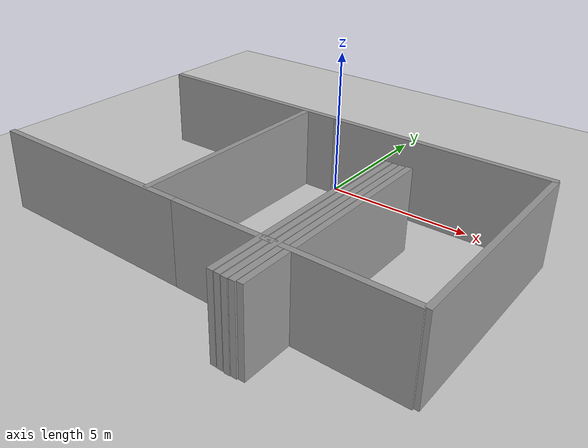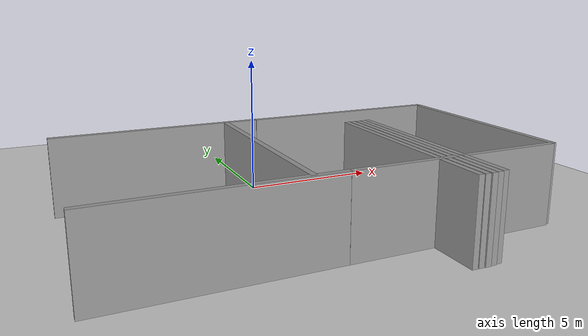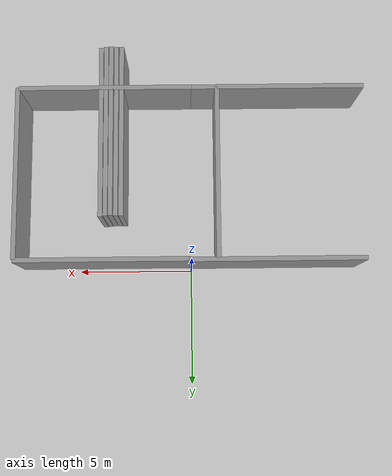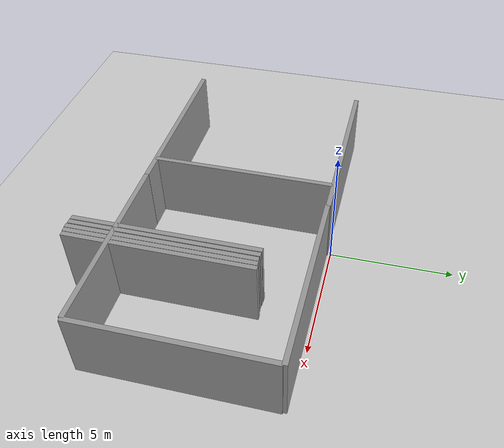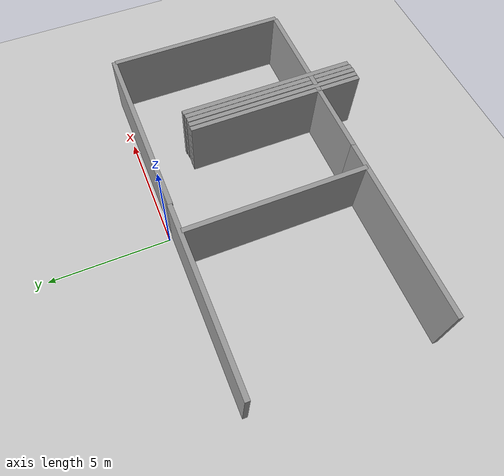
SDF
<sdf version="1.7">
 <world name="default">
  <model name="ground_plane">
   <static>1</static>
   <link name="link">
    <collision name="collision">
     <geometry><plane><normal>0 0 1</normal><size>100 100</size></plane></geometry>
     <surface><friction><ode><mu>100</mu><mu2>50</mu2></ode></friction></surface>
    </collision>
    <visual name="visual">
     <cast_shadows>0</cast_shadows>
     <geometry><plane><normal>0 0 1</normal><size>100 100</size></plane></geometry>
     <material>
      <script><uri>file://media/materials/scripts/gazebo.material</uri><name>Gazebo/Grey</name></script>
     </material>
    </visual>
   </link>
  </model>
  <light name="sun" type="directional">
   <pose>0 0 10 0 -0 0</pose>
   <diffuse>0.8 0.8 0.8 1</diffuse>
   <specular>0.2 0.2 0.2 1</specular>
   <attenuation>
    <range>1000</range>
    <constant>0.9</constant>
    <linear>0.01</linear>
    <quadratic>0.001</quadratic>
   </attenuation>
   <direction>-0.5 0.1 -0.9</direction>
   <spot><inner_angle>0</inner_angle><outer_angle>0</outer_angle><falloff>0</falloff></spot>
  </light>
  <scene><shadows>0</shadows><ambient>0.4 0.4 0.4 1</ambient><background>0.7 0.7 0.7 1</background></scene>
  <physics type="ode">
   <real_time_update_rate>1000</real_time_update_rate>
   <max_step_size>0.001</max_step_size>
   <real_time_factor>1</real_time_factor>
   <ode>
    <solver>
     <type>quick</type>
     <iters>150</iters>
     <precon_iters>0</precon_iters>
     <sor>1.4</sor>
     <use_dynamic_moi_rescaling>1</use_dynamic_moi_rescaling>
    </solver>
    <constraints>
     <cfm>1e-05</cfm>
     <erp>0.2</erp>
     <contact_max_correcting_vel>2000</contact_max_correcting_vel>
     <contact_surface_layer>0.01</contact_surface_layer>
    </constraints>
   </ode>
  </physics>
  <gravity>0 0 -9.8</gravity>
  <magnetic_field>6e-06 2.3e-05 -4.2e-05</magnetic_field>
  <atmosphere type="adiabatic"/>
  <audio><device>default</device></audio>
  <spherical_coordinates>
   <surface_model>EARTH_WGS84</surface_model>
   <latitude_deg>0</latitude_deg>
   <longitude_deg>0</longitude_deg>
   <elevation>0</elevation>
   <heading_deg>0</heading_deg>
  </spherical_coordinates>
  <model name="grey_wall">
   <static>1</static>
   <link name="link">
    <pose>0 0 1.4 0 -0 0</pose>
    <collision name="collision"><geometry><box><size>7.5 0.2 2.8</size></box></geometry></collision>
    <visual name="visual">
     <cast_shadows>0</cast_shadows>
     <geometry><box><size>7.5 0.2 2.8</size></box></geometry>
     <material>
      <script>
       <uri>model://grey_wall/materials/scripts</uri>
       <uri>model://grey_wall/materials/textures</uri>
       <name>vrc/grey_wall</name>
      </script>
     </material>
    </visual>
   </link>
   <pose>3.6716 -7.76563 0 0 -0 0</pose>
  </model>
  <model name="grey_wall_clone">
   <static>1</static>
   <link name="link">
    <pose>0 0 1.4 0 -0 0</pose>
    <collision name="collision"><geometry><box><size>7.5 0.2 2.8</size></box></geometry></collision>
    <visual name="visual">
     <cast_shadows>0</cast_shadows>
     <geometry><box><size>7.5 0.2 2.8</size></box></geometry>
     <material>
      <script>
       <uri>model://grey_wall/materials/scripts</uri>
       <uri>model://grey_wall/materials/textures</uri>
       <name>vrc/grey_wall</name>
      </script>
     </material>
    </visual>
   </link>
   <pose>-3.79977 -7.76176 0 0 -0 0</pose>
  </model>
  <model name="grey_wall_clone_0">
   <static>1</static>
   <link name="link">
    <pose>0 0 1.4 0 -0 0</pose>
    <collision name="collision"><geometry><box><size>7.5 0.2 2.8</size></box></geometry></collision>
    <visual name="visual">
     <cast_shadows>0</cast_shadows>
     <geometry><box><size>7.5 0.2 2.8</size></box></geometry>
     <material>
      <script>
       <uri>model://grey_wall/materials/scripts</uri>
       <uri>model://grey_wall/materials/textures</uri>
       <name>vrc/grey_wall</name>
      </script>
     </material>
    </visual>
   </link>
   <pose>7.47605 -4.0526 0 0 0 -1.57294</pose>
  </model>
  <model name="grey_wall_clone_0_clone">
   <static>1</static>
   <link name="link">
    <pose>0 0 1.4 0 -0 0</pose>
    <collision name="collision"><geometry><box><size>7.5 0.2 2.8</size></box></geometry></collision>
    <visual name="visual">
     <cast_shadows>0</cast_shadows>
     <geometry><box><size>7.5 0.2 2.8</size></box></geometry>
     <material>
      <script>
       <uri>model://grey_wall/materials/scripts</uri>
       <uri>model://grey_wall/materials/textures</uri>
       <name>vrc/grey_wall</name>
      </script>
     </material>
    </visual>
   </link>
   <pose>2.97061 -5.85759 0 0 0 -1.57294</pose>
  </model>
  <model name="grey_wall_clone_0_clone_0">
   <static>1</static>
   <link name="link">
    <pose>0 0 1.4 0 -0 0</pose>
    <collision name="collision"><geometry><box><size>7.5 0.2 2.8</size></box></geometry></collision>
    <visual name="visual">
     <cast_shadows>0</cast_shadows>
     <geometry><box><size>7.5 0.2 2.8</size></box></geometry>
     <material>
      <script>
       <uri>model://grey_wall/materials/scripts</uri>
       <uri>model://grey_wall/materials/textures</uri>
       <name>vrc/grey_wall</name>
      </script>
     </material>
    </visual>
   </link>
   <pose>-1.16465 -4.02544 0 0 0 -1.57294</pose>
  </model>
  <model name="grey_wall_clone_0_clone_clone">
   <static>1</static>
   <link name="link">
    <pose>0 0 1.4 0 -0 0</pose>
    <collision name="collision"><geometry><box><size>7.5 0.2 2.8</size></box></geometry></collision>
    <visual name="visual">
     <cast_shadows>0</cast_shadows>
     <geometry><box><size>7.5 0.2 2.8</size></box></geometry>
     <material>
      <script>
       <uri>model://grey_wall/materials/scripts</uri>
       <uri>model://grey_wall/materials/textures</uri>
       <name>vrc/grey_wall</name>
      </script>
     </material>
    </visual>
   </link>
   <pose>3.77963 -0.257428 0 0 0 -3.14095</pose>
  </model>
  <model name="grey_wall_clone_0_clone_clone_clone">
   <static>1</static>
   <link name="link">
    <pose>0 0 1.4 0 -0 0</pose>
    <collision name="collision"><geometry><box><size>7.5 0.2 2.8</size></box></geometry></collision>
    <visual name="visual">
     <cast_shadows>0</cast_shadows>
     <geometry><box><size>7.5 0.2 2.8</size></box></geometry>
     <material>
      <script>
       <uri>model://grey_wall/materials/scripts</uri>
       <uri>model://grey_wall/materials/textures</uri>
       <name>vrc/grey_wall</name>
      </script>
     </material>
    </visual>
   </link>
   <pose>-3.65993 -0.23195 0 0 0 -3.14095</pose>
  </model>
  <model name="grey_wall_clone_0_clone_clone_1">
   <static>1</static>
   <link name="link">
    <pose>0 0 1.4 0 -0 0</pose>
    <collision name="collision"><geometry><box><size>7.5 0.2 2.8</size></box></geometry></collision>
    <visual name="visual">
     <cast_shadows>0</cast_shadows>
     <geometry><box><size>7.5 0.2 2.8</size></box></geometry>
     <material>
      <script>
       <uri>model://grey_wall/materials/scripts</uri>
       <uri>model://grey_wall/materials/textures</uri>
       <name>vrc/grey_wall</name>
      </script>
     </material>
    </visual>
   </link>
   <pose>3.19517 -5.86394 0 0 0 -1.57294</pose>
  </model>
  <model name="grey_wall_clone_0_clone_clone_2">
   <static>1</static>
   <link name="link">
    <pose>0 0 1.4 0 -0 0</pose>
    <collision name="collision"><geometry><box><size>7.5 0.2 2.8</size></box></geometry></collision>
    <visual name="visual">
     <cast_shadows>0</cast_shadows>
     <geometry><box><size>7.5 0.2 2.8</size></box></geometry>
     <material>
      <script>
       <uri>model://grey_wall/materials/scripts</uri>
       <uri>model://grey_wall/materials/textures</uri>
       <name>vrc/grey_wall</name>
      </script>
     </material>
    </visual>
   </link>
   <pose>3.4253 -5.88101 0 0 0 -1.57294</pose>
  </model>
  <model name="grey_wall_clone_0_clone_clone_3">
   <static>1</static>
   <link name="link">
    <pose>0 0 1.4 0 -0 0</pose>
    <collision name="collision"><geometry><box><size>7.5 0.2 2.8</size></box></geometry></collision>
    <visual name="visual">
     <cast_shadows>0</cast_shadows>
     <geometry><box><size>7.5 0.2 2.8</size></box></geometry>
     <material>
      <script>
       <uri>model://grey_wall/materials/scripts</uri>
       <uri>model://grey_wall/materials/textures</uri>
       <name>vrc/grey_wall</name>
      </script>
     </material>
    </visual>
   </link>
   <pose>3.63761 -5.86278 0 0 0 -1.57294</pose>
  </model>
  <model name="grey_wall_clone_0_clone_clone_4">
   <static>1</static>
   <link name="link">
    <pose>0 0 1.4 0 -0 0</pose>
    <collision name="collision"><geometry><box><size>7.5 0.2 2.8</size></box></geometry></collision>
    <visual name="visual">
     <cast_shadows>0</cast_shadows>
     <geometry><box><size>7.5 0.2 2.8</size></box></geometry>
     <material>
      <script>
       <uri>model://grey_wall/materials/scripts</uri>
       <uri>model://grey_wall/materials/textures</uri>
       <name>vrc/grey_wall</name>
      </script>
     </material>
    </visual>
   </link>
   <pose>3.8499 -5.82678 0 0 0 -1.57294</pose>
  </model>
 </world>
</sdf>
